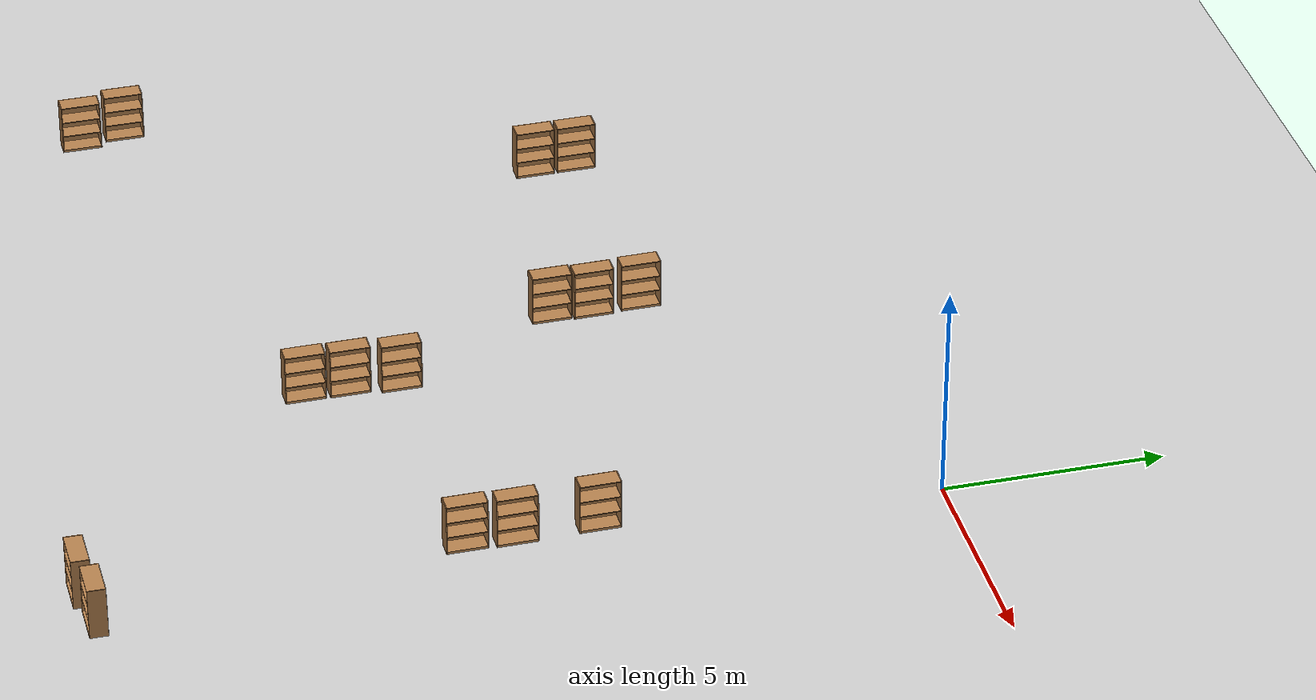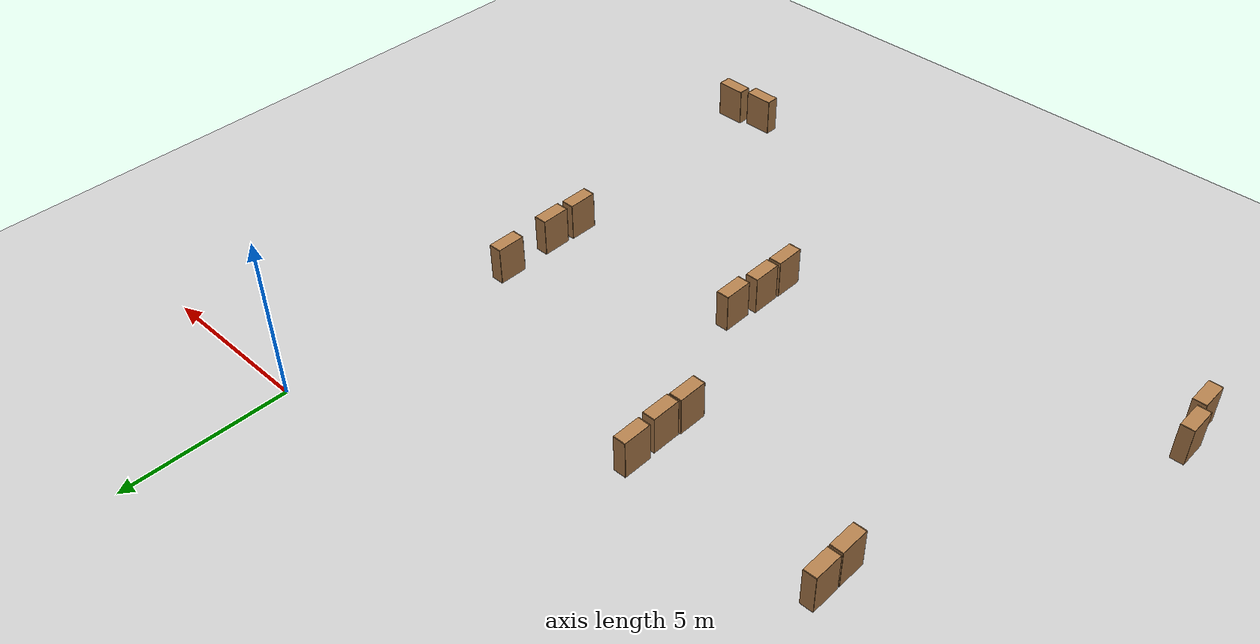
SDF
<sdf version="1.6">
 <world name="default">
  <model name="ground_plane">
   <static>1</static>
   <link name="link">
    <collision name="collision">
     <geometry><plane><normal>0 0 1</normal><size>100 100</size></plane></geometry>
     <surface>
      <contact><collide_bitmask>65535</collide_bitmask></contact>
      <friction><ode><mu>100</mu><mu2>50</mu2></ode></friction>
     </surface>
    </collision>
    <visual name="visual">
     <cast_shadows>0</cast_shadows>
     <geometry><plane><normal>0 0 1</normal><size>100 100</size></plane></geometry>
     <material>
      <script><uri>file://media/materials/scripts/gazebo.material</uri><name>Gazebo/Grey</name></script>
     </material>
    </visual>
   </link>
  </model>
  <model name="bookshelf_clone_clone_0_clone_clone_0_clone_0">
   <static>1</static>
   <link name="link">
    <inertial><mass>1</mass></inertial>
    <collision name="back">
     <pose>0 0.005 0.6 0 -0 0</pose>
     <geometry><box><size>0.9 0.01 1.2</size></box></geometry>
    </collision>
    <visual name="visual1">
     <pose>0 0.005 0.6 0 -0 0</pose>
     <geometry><box><size>0.9 0.01 1.2</size></box></geometry>
     <material>
      <script><uri>file://media/materials/scripts/gazebo.material</uri><name>Gazebo/Wood</name></script>
     </material>
    </visual>
    <collision name="left_side">
     <pose>0.45 -0.195 0.6 0 -0 0</pose>
     <geometry><box><size>0.02 0.4 1.2</size></box></geometry>
    </collision>
    <visual name="visual2">
     <pose>0.45 -0.195 0.6 0 -0 0</pose>
     <geometry><box><size>0.02 0.4 1.2</size></box></geometry>
     <material>
      <script><uri>file://media/materials/scripts/gazebo.material</uri><name>Gazebo/Wood</name></script>
     </material>
    </visual>
    <collision name="right_side">
     <pose>-0.45 -0.195 0.6 0 -0 0</pose>
     <geometry><box><size>0.02 0.4 1.2</size></box></geometry>
    </collision>
    <visual name="visual3">
     <pose>-0.45 -0.195 0.6 0 -0 0</pose>
     <geometry><box><size>0.02 0.4 1.2</size></box></geometry>
     <material>
      <script><uri>file://media/materials/scripts/gazebo.material</uri><name>Gazebo/Wood</name></script>
     </material>
    </visual>
    <collision name="bottom">
     <pose>0 -0.195 0.03 0 -0 0</pose>
     <geometry><box><size>0.88 0.4 0.06</size></box></geometry>
    </collision>
    <visual name="visual4">
     <pose>0 -0.195 0.03 0 -0 0</pose>
     <geometry><box><size>0.88 0.4 0.06</size></box></geometry>
     <material>
      <script><uri>file://media/materials/scripts/gazebo.material</uri><name>Gazebo/Wood</name></script>
     </material>
    </visual>
    <collision name="top">
     <pose>0 -0.195 1.19 0 -0 0</pose>
     <geometry><box><size>0.88 0.4 0.02</size></box></geometry>
    </collision>
    <visual name="visual5">
     <pose>0 -0.195 1.19 0 -0 0</pose>
     <geometry><box><size>0.88 0.4 0.02</size></box></geometry>
     <material>
      <script><uri>file://media/materials/scripts/gazebo.material</uri><name>Gazebo/Wood</name></script>
     </material>
    </visual>
    <collision name="low_shelf">
     <pose>0 -0.195 0.43 0 -0 0</pose>
     <geometry><box><size>0.88 0.4 0.02</size></box></geometry>
    </collision>
    <visual name="visual6">
     <pose>0 -0.195 0.43 0 -0 0</pose>
     <geometry><box><size>0.88 0.4 0.02</size></box></geometry>
     <material>
      <script><uri>file://media/materials/scripts/gazebo.material</uri><name>Gazebo/Wood</name></script>
     </material>
    </visual>
    <collision name="high_shelf">
     <pose>0 -0.195 0.8 0 -0 0</pose>
     <geometry><box><size>0.88 0.4 0.02</size></box></geometry>
    </collision>
    <visual name="visual7">
     <pose>0 -0.195 0.8 0 -0 0</pose>
     <geometry><box><size>0.88 0.4 0.02</size></box></geometry>
     <material>
      <script><uri>file://media/materials/scripts/gazebo.material</uri><name>Gazebo/Wood</name></script>
     </material>
    </visual>
   </link>
   <pose>-14.7086 -4.5102 0 0 -0 1.58018</pose>
  </model>
  <model name="bookshelf_clone_clone_0_clone_clone_0_clone_1">
   <static>1</static>
   <link name="link">
    <inertial><mass>1</mass></inertial>
    <collision name="back">
     <pose>0 0.005 0.6 0 -0 0</pose>
     <geometry><box><size>0.9 0.01 1.2</size></box></geometry>
    </collision>
    <visual name="visual1">
     <pose>0 0.005 0.6 0 -0 0</pose>
     <geometry><box><size>0.9 0.01 1.2</size></box></geometry>
     <material>
      <script><uri>file://media/materials/scripts/gazebo.material</uri><name>Gazebo/Wood</name></script>
     </material>
    </visual>
    <collision name="left_side">
     <pose>0.45 -0.195 0.6 0 -0 0</pose>
     <geometry><box><size>0.02 0.4 1.2</size></box></geometry>
    </collision>
    <visual name="visual2">
     <pose>0.45 -0.195 0.6 0 -0 0</pose>
     <geometry><box><size>0.02 0.4 1.2</size></box></geometry>
     <material>
      <script><uri>file://media/materials/scripts/gazebo.material</uri><name>Gazebo/Wood</name></script>
     </material>
    </visual>
    <collision name="right_side">
     <pose>-0.45 -0.195 0.6 0 -0 0</pose>
     <geometry><box><size>0.02 0.4 1.2</size></box></geometry>
    </collision>
    <visual name="visual3">
     <pose>-0.45 -0.195 0.6 0 -0 0</pose>
     <geometry><box><size>0.02 0.4 1.2</size></box></geometry>
     <material>
      <script><uri>file://media/materials/scripts/gazebo.material</uri><name>Gazebo/Wood</name></script>
     </material>
    </visual>
    <collision name="bottom">
     <pose>0 -0.195 0.03 0 -0 0</pose>
     <geometry><box><size>0.88 0.4 0.06</size></box></geometry>
    </collision>
    <visual name="visual4">
     <pose>0 -0.195 0.03 0 -0 0</pose>
     <geometry><box><size>0.88 0.4 0.06</size></box></geometry>
     <material>
      <script><uri>file://media/materials/scripts/gazebo.material</uri><name>Gazebo/Wood</name></script>
     </material>
    </visual>
    <collision name="top">
     <pose>0 -0.195 1.19 0 -0 0</pose>
     <geometry><box><size>0.88 0.4 0.02</size></box></geometry>
    </collision>
    <visual name="visual5">
     <pose>0 -0.195 1.19 0 -0 0</pose>
     <geometry><box><size>0.88 0.4 0.02</size></box></geometry>
     <material>
      <script><uri>file://media/materials/scripts/gazebo.material</uri><name>Gazebo/Wood</name></script>
     </material>
    </visual>
    <collision name="low_shelf">
     <pose>0 -0.195 0.43 0 -0 0</pose>
     <geometry><box><size>0.88 0.4 0.02</size></box></geometry>
    </collision>
    <visual name="visual6">
     <pose>0 -0.195 0.43 0 -0 0</pose>
     <geometry><box><size>0.88 0.4 0.02</size></box></geometry>
     <material>
      <script><uri>file://media/materials/scripts/gazebo.material</uri><name>Gazebo/Wood</name></script>
     </material>
    </visual>
    <collision name="high_shelf">
     <pose>0 -0.195 0.8 0 -0 0</pose>
     <geometry><box><size>0.88 0.4 0.02</size></box></geometry>
    </collision>
    <visual name="visual7">
     <pose>0 -0.195 0.8 0 -0 0</pose>
     <geometry><box><size>0.88 0.4 0.02</size></box></geometry>
     <material>
      <script><uri>file://media/materials/scripts/gazebo.material</uri><name>Gazebo/Wood</name></script>
     </material>
    </visual>
   </link>
   <pose>-14.6943 -5.48506 0 0 -0 1.58018</pose>
  </model>
  <model name="bookshelf_clone_clone_0_clone_clone_0_clone_1_clone">
   <static>1</static>
   <link name="link">
    <inertial><mass>1</mass></inertial>
    <collision name="back">
     <pose>0 0.005 0.6 0 -0 0</pose>
     <geometry><box><size>0.9 0.01 1.2</size></box></geometry>
    </collision>
    <visual name="visual1">
     <pose>0 0.005 0.6 0 -0 0</pose>
     <geometry><box><size>0.9 0.01 1.2</size></box></geometry>
     <material>
      <script><uri>file://media/materials/scripts/gazebo.material</uri><name>Gazebo/Wood</name></script>
     </material>
    </visual>
    <collision name="left_side">
     <pose>0.45 -0.195 0.6 0 -0 0</pose>
     <geometry><box><size>0.02 0.4 1.2</size></box></geometry>
    </collision>
    <visual name="visual2">
     <pose>0.45 -0.195 0.6 0 -0 0</pose>
     <geometry><box><size>0.02 0.4 1.2</size></box></geometry>
     <material>
      <script><uri>file://media/materials/scripts/gazebo.material</uri><name>Gazebo/Wood</name></script>
     </material>
    </visual>
    <collision name="right_side">
     <pose>-0.45 -0.195 0.6 0 -0 0</pose>
     <geometry><box><size>0.02 0.4 1.2</size></box></geometry>
    </collision>
    <visual name="visual3">
     <pose>-0.45 -0.195 0.6 0 -0 0</pose>
     <geometry><box><size>0.02 0.4 1.2</size></box></geometry>
     <material>
      <script><uri>file://media/materials/scripts/gazebo.material</uri><name>Gazebo/Wood</name></script>
     </material>
    </visual>
    <collision name="bottom">
     <pose>0 -0.195 0.03 0 -0 0</pose>
     <geometry><box><size>0.88 0.4 0.06</size></box></geometry>
    </collision>
    <visual name="visual4">
     <pose>0 -0.195 0.03 0 -0 0</pose>
     <geometry><box><size>0.88 0.4 0.06</size></box></geometry>
     <material>
      <script><uri>file://media/materials/scripts/gazebo.material</uri><name>Gazebo/Wood</name></script>
     </material>
    </visual>
    <collision name="top">
     <pose>0 -0.195 1.19 0 -0 0</pose>
     <geometry><box><size>0.88 0.4 0.02</size></box></geometry>
    </collision>
    <visual name="visual5">
     <pose>0 -0.195 1.19 0 -0 0</pose>
     <geometry><box><size>0.88 0.4 0.02</size></box></geometry>
     <material>
      <script><uri>file://media/materials/scripts/gazebo.material</uri><name>Gazebo/Wood</name></script>
     </material>
    </visual>
    <collision name="low_shelf">
     <pose>0 -0.195 0.43 0 -0 0</pose>
     <geometry><box><size>0.88 0.4 0.02</size></box></geometry>
    </collision>
    <visual name="visual6">
     <pose>0 -0.195 0.43 0 -0 0</pose>
     <geometry><box><size>0.88 0.4 0.02</size></box></geometry>
     <material>
      <script><uri>file://media/materials/scripts/gazebo.material</uri><name>Gazebo/Wood</name></script>
     </material>
    </visual>
    <collision name="high_shelf">
     <pose>0 -0.195 0.8 0 -0 0</pose>
     <geometry><box><size>0.88 0.4 0.02</size></box></geometry>
    </collision>
    <visual name="visual7">
     <pose>0 -0.195 0.8 0 -0 0</pose>
     <geometry><box><size>0.88 0.4 0.02</size></box></geometry>
     <material>
      <script><uri>file://media/materials/scripts/gazebo.material</uri><name>Gazebo/Wood</name></script>
     </material>
    </visual>
   </link>
   <pose>-18.6436 -14.5097 0 0 -0 1.58018</pose>
  </model>
  <model name="bookshelf_clone_clone_0_clone_clone_0_clone_1_clone_0">
   <static>1</static>
   <link name="link">
    <inertial><mass>1</mass></inertial>
    <collision name="back">
     <pose>0 0.005 0.6 0 -0 0</pose>
     <geometry><box><size>0.9 0.01 1.2</size></box></geometry>
    </collision>
    <visual name="visual1">
     <pose>0 0.005 0.6 0 -0 0</pose>
     <geometry><box><size>0.9 0.01 1.2</size></box></geometry>
     <material>
      <script><uri>file://media/materials/scripts/gazebo.material</uri><name>Gazebo/Wood</name></script>
     </material>
    </visual>
    <collision name="left_side">
     <pose>0.45 -0.195 0.6 0 -0 0</pose>
     <geometry><box><size>0.02 0.4 1.2</size></box></geometry>
    </collision>
    <visual name="visual2">
     <pose>0.45 -0.195 0.6 0 -0 0</pose>
     <geometry><box><size>0.02 0.4 1.2</size></box></geometry>
     <material>
      <script><uri>file://media/materials/scripts/gazebo.material</uri><name>Gazebo/Wood</name></script>
     </material>
    </visual>
    <collision name="right_side">
     <pose>-0.45 -0.195 0.6 0 -0 0</pose>
     <geometry><box><size>0.02 0.4 1.2</size></box></geometry>
    </collision>
    <visual name="visual3">
     <pose>-0.45 -0.195 0.6 0 -0 0</pose>
     <geometry><box><size>0.02 0.4 1.2</size></box></geometry>
     <material>
      <script><uri>file://media/materials/scripts/gazebo.material</uri><name>Gazebo/Wood</name></script>
     </material>
    </visual>
    <collision name="bottom">
     <pose>0 -0.195 0.03 0 -0 0</pose>
     <geometry><box><size>0.88 0.4 0.06</size></box></geometry>
    </collision>
    <visual name="visual4">
     <pose>0 -0.195 0.03 0 -0 0</pose>
     <geometry><box><size>0.88 0.4 0.06</size></box></geometry>
     <material>
      <script><uri>file://media/materials/scripts/gazebo.material</uri><name>Gazebo/Wood</name></script>
     </material>
    </visual>
    <collision name="top">
     <pose>0 -0.195 1.19 0 -0 0</pose>
     <geometry><box><size>0.88 0.4 0.02</size></box></geometry>
    </collision>
    <visual name="visual5">
     <pose>0 -0.195 1.19 0 -0 0</pose>
     <geometry><box><size>0.88 0.4 0.02</size></box></geometry>
     <material>
      <script><uri>file://media/materials/scripts/gazebo.material</uri><name>Gazebo/Wood</name></script>
     </material>
    </visual>
    <collision name="low_shelf">
     <pose>0 -0.195 0.43 0 -0 0</pose>
     <geometry><box><size>0.88 0.4 0.02</size></box></geometry>
    </collision>
    <visual name="visual6">
     <pose>0 -0.195 0.43 0 -0 0</pose>
     <geometry><box><size>0.88 0.4 0.02</size></box></geometry>
     <material>
      <script><uri>file://media/materials/scripts/gazebo.material</uri><name>Gazebo/Wood</name></script>
     </material>
    </visual>
    <collision name="high_shelf">
     <pose>0 -0.195 0.8 0 -0 0</pose>
     <geometry><box><size>0.88 0.4 0.02</size></box></geometry>
    </collision>
    <visual name="visual7">
     <pose>0 -0.195 0.8 0 -0 0</pose>
     <geometry><box><size>0.88 0.4 0.02</size></box></geometry>
     <material>
      <script><uri>file://media/materials/scripts/gazebo.material</uri><name>Gazebo/Wood</name></script>
     </material>
    </visual>
   </link>
   <pose>-18.4316 -15.5537 0 0 -0 1.58018</pose>
  </model>
  <model name="bookshelf_clone_clone_0_clone_clone_0_clone_5_clone">
   <static>1</static>
   <link name="link">
    <inertial><mass>1</mass></inertial>
    <collision name="back">
     <pose>0 0.005 0.6 0 -0 0</pose>
     <geometry><box><size>0.9 0.01 1.2</size></box></geometry>
    </collision>
    <visual name="visual1">
     <pose>0 0.005 0.6 0 -0 0</pose>
     <geometry><box><size>0.9 0.01 1.2</size></box></geometry>
     <material>
      <script><uri>file://media/materials/scripts/gazebo.material</uri><name>Gazebo/Wood</name></script>
     </material>
    </visual>
    <collision name="left_side">
     <pose>0.45 -0.195 0.6 0 -0 0</pose>
     <geometry><box><size>0.02 0.4 1.2</size></box></geometry>
    </collision>
    <visual name="visual2">
     <pose>0.45 -0.195 0.6 0 -0 0</pose>
     <geometry><box><size>0.02 0.4 1.2</size></box></geometry>
     <material>
      <script><uri>file://media/materials/scripts/gazebo.material</uri><name>Gazebo/Wood</name></script>
     </material>
    </visual>
    <collision name="right_side">
     <pose>-0.45 -0.195 0.6 0 -0 0</pose>
     <geometry><box><size>0.02 0.4 1.2</size></box></geometry>
    </collision>
    <visual name="visual3">
     <pose>-0.45 -0.195 0.6 0 -0 0</pose>
     <geometry><box><size>0.02 0.4 1.2</size></box></geometry>
     <material>
      <script><uri>file://media/materials/scripts/gazebo.material</uri><name>Gazebo/Wood</name></script>
     </material>
    </visual>
    <collision name="bottom">
     <pose>0 -0.195 0.03 0 -0 0</pose>
     <geometry><box><size>0.88 0.4 0.06</size></box></geometry>
    </collision>
    <visual name="visual4">
     <pose>0 -0.195 0.03 0 -0 0</pose>
     <geometry><box><size>0.88 0.4 0.06</size></box></geometry>
     <material>
      <script><uri>file://media/materials/scripts/gazebo.material</uri><name>Gazebo/Wood</name></script>
     </material>
    </visual>
    <collision name="top">
     <pose>0 -0.195 1.19 0 -0 0</pose>
     <geometry><box><size>0.88 0.4 0.02</size></box></geometry>
    </collision>
    <visual name="visual5">
     <pose>0 -0.195 1.19 0 -0 0</pose>
     <geometry><box><size>0.88 0.4 0.02</size></box></geometry>
     <material>
      <script><uri>file://media/materials/scripts/gazebo.material</uri><name>Gazebo/Wood</name></script>
     </material>
    </visual>
    <collision name="low_shelf">
     <pose>0 -0.195 0.43 0 -0 0</pose>
     <geometry><box><size>0.88 0.4 0.02</size></box></geometry>
    </collision>
    <visual name="visual6">
     <pose>0 -0.195 0.43 0 -0 0</pose>
     <geometry><box><size>0.88 0.4 0.02</size></box></geometry>
     <material>
      <script><uri>file://media/materials/scripts/gazebo.material</uri><name>Gazebo/Wood</name></script>
     </material>
    </visual>
    <collision name="high_shelf">
     <pose>0 -0.195 0.8 0 -0 0</pose>
     <geometry><box><size>0.88 0.4 0.02</size></box></geometry>
    </collision>
    <visual name="visual7">
     <pose>0 -0.195 0.8 0 -0 0</pose>
     <geometry><box><size>0.88 0.4 0.02</size></box></geometry>
     <material>
      <script><uri>file://media/materials/scripts/gazebo.material</uri><name>Gazebo/Wood</name></script>
     </material>
    </visual>
   </link>
   <pose>-8.72005 -4.497 0 0 -0 1.58018</pose>
  </model>
  <model name="bookshelf_clone_clone_0_clone_clone_0_clone_5_clone_0">
   <static>1</static>
   <link name="link">
    <inertial><mass>1</mass></inertial>
    <collision name="back">
     <pose>0 0.005 0.6 0 -0 0</pose>
     <geometry><box><size>0.9 0.01 1.2</size></box></geometry>
    </collision>
    <visual name="visual1">
     <pose>0 0.005 0.6 0 -0 0</pose>
     <geometry><box><size>0.9 0.01 1.2</size></box></geometry>
     <material>
      <script><uri>file://media/materials/scripts/gazebo.material</uri><name>Gazebo/Wood</name></script>
     </material>
    </visual>
    <collision name="left_side">
     <pose>0.45 -0.195 0.6 0 -0 0</pose>
     <geometry><box><size>0.02 0.4 1.2</size></box></geometry>
    </collision>
    <visual name="visual2">
     <pose>0.45 -0.195 0.6 0 -0 0</pose>
     <geometry><box><size>0.02 0.4 1.2</size></box></geometry>
     <material>
      <script><uri>file://media/materials/scripts/gazebo.material</uri><name>Gazebo/Wood</name></script>
     </material>
    </visual>
    <collision name="right_side">
     <pose>-0.45 -0.195 0.6 0 -0 0</pose>
     <geometry><box><size>0.02 0.4 1.2</size></box></geometry>
    </collision>
    <visual name="visual3">
     <pose>-0.45 -0.195 0.6 0 -0 0</pose>
     <geometry><box><size>0.02 0.4 1.2</size></box></geometry>
     <material>
      <script><uri>file://media/materials/scripts/gazebo.material</uri><name>Gazebo/Wood</name></script>
     </material>
    </visual>
    <collision name="bottom">
     <pose>0 -0.195 0.03 0 -0 0</pose>
     <geometry><box><size>0.88 0.4 0.06</size></box></geometry>
    </collision>
    <visual name="visual4">
     <pose>0 -0.195 0.03 0 -0 0</pose>
     <geometry><box><size>0.88 0.4 0.06</size></box></geometry>
     <material>
      <script><uri>file://media/materials/scripts/gazebo.material</uri><name>Gazebo/Wood</name></script>
     </material>
    </visual>
    <collision name="top">
     <pose>0 -0.195 1.19 0 -0 0</pose>
     <geometry><box><size>0.88 0.4 0.02</size></box></geometry>
    </collision>
    <visual name="visual5">
     <pose>0 -0.195 1.19 0 -0 0</pose>
     <geometry><box><size>0.88 0.4 0.02</size></box></geometry>
     <material>
      <script><uri>file://media/materials/scripts/gazebo.material</uri><name>Gazebo/Wood</name></script>
     </material>
    </visual>
    <collision name="low_shelf">
     <pose>0 -0.195 0.43 0 -0 0</pose>
     <geometry><box><size>0.88 0.4 0.02</size></box></geometry>
    </collision>
    <visual name="visual6">
     <pose>0 -0.195 0.43 0 -0 0</pose>
     <geometry><box><size>0.88 0.4 0.02</size></box></geometry>
     <material>
      <script><uri>file://media/materials/scripts/gazebo.material</uri><name>Gazebo/Wood</name></script>
     </material>
    </visual>
    <collision name="high_shelf">
     <pose>0 -0.195 0.8 0 -0 0</pose>
     <geometry><box><size>0.88 0.4 0.02</size></box></geometry>
    </collision>
    <visual name="visual7">
     <pose>0 -0.195 0.8 0 -0 0</pose>
     <geometry><box><size>0.88 0.4 0.02</size></box></geometry>
     <material>
      <script><uri>file://media/materials/scripts/gazebo.material</uri><name>Gazebo/Wood</name></script>
     </material>
    </visual>
   </link>
   <pose>-8.66421 -5.59645 0 0 -0 1.58018</pose>
  </model>
  <model name="bookshelf_clone_clone_0_clone_clone_0_clone_5_clone_1">
   <static>1</static>
   <link name="link">
    <inertial><mass>1</mass></inertial>
    <collision name="back">
     <pose>0 0.005 0.6 0 -0 0</pose>
     <geometry><box><size>0.9 0.01 1.2</size></box></geometry>
    </collision>
    <visual name="visual1">
     <pose>0 0.005 0.6 0 -0 0</pose>
     <geometry><box><size>0.9 0.01 1.2</size></box></geometry>
     <material>
      <script><uri>file://media/materials/scripts/gazebo.material</uri><name>Gazebo/Wood</name></script>
     </material>
    </visual>
    <collision name="left_side">
     <pose>0.45 -0.195 0.6 0 -0 0</pose>
     <geometry><box><size>0.02 0.4 1.2</size></box></geometry>
    </collision>
    <visual name="visual2">
     <pose>0.45 -0.195 0.6 0 -0 0</pose>
     <geometry><box><size>0.02 0.4 1.2</size></box></geometry>
     <material>
      <script><uri>file://media/materials/scripts/gazebo.material</uri><name>Gazebo/Wood</name></script>
     </material>
    </visual>
    <collision name="right_side">
     <pose>-0.45 -0.195 0.6 0 -0 0</pose>
     <geometry><box><size>0.02 0.4 1.2</size></box></geometry>
    </collision>
    <visual name="visual3">
     <pose>-0.45 -0.195 0.6 0 -0 0</pose>
     <geometry><box><size>0.02 0.4 1.2</size></box></geometry>
     <material>
      <script><uri>file://media/materials/scripts/gazebo.material</uri><name>Gazebo/Wood</name></script>
     </material>
    </visual>
    <collision name="bottom">
     <pose>0 -0.195 0.03 0 -0 0</pose>
     <geometry><box><size>0.88 0.4 0.06</size></box></geometry>
    </collision>
    <visual name="visual4">
     <pose>0 -0.195 0.03 0 -0 0</pose>
     <geometry><box><size>0.88 0.4 0.06</size></box></geometry>
     <material>
      <script><uri>file://media/materials/scripts/gazebo.material</uri><name>Gazebo/Wood</name></script>
     </material>
    </visual>
    <collision name="top">
     <pose>0 -0.195 1.19 0 -0 0</pose>
     <geometry><box><size>0.88 0.4 0.02</size></box></geometry>
    </collision>
    <visual name="visual5">
     <pose>0 -0.195 1.19 0 -0 0</pose>
     <geometry><box><size>0.88 0.4 0.02</size></box></geometry>
     <material>
      <script><uri>file://media/materials/scripts/gazebo.material</uri><name>Gazebo/Wood</name></script>
     </material>
    </visual>
    <collision name="low_shelf">
     <pose>0 -0.195 0.43 0 -0 0</pose>
     <geometry><box><size>0.88 0.4 0.02</size></box></geometry>
    </collision>
    <visual name="visual6">
     <pose>0 -0.195 0.43 0 -0 0</pose>
     <geometry><box><size>0.88 0.4 0.02</size></box></geometry>
     <material>
      <script><uri>file://media/materials/scripts/gazebo.material</uri><name>Gazebo/Wood</name></script>
     </material>
    </visual>
    <collision name="high_shelf">
     <pose>0 -0.195 0.8 0 -0 0</pose>
     <geometry><box><size>0.88 0.4 0.02</size></box></geometry>
    </collision>
    <visual name="visual7">
     <pose>0 -0.195 0.8 0 -0 0</pose>
     <geometry><box><size>0.88 0.4 0.02</size></box></geometry>
     <material>
      <script><uri>file://media/materials/scripts/gazebo.material</uri><name>Gazebo/Wood</name></script>
     </material>
    </visual>
   </link>
   <pose>-8.69131 -6.55375 0 0 -0 1.58018</pose>
  </model>
  <model name="bookshelf_clone_clone_2_clone_5">
   <static>1</static>
   <link name="link">
    <inertial><mass>1</mass></inertial>
    <collision name="back">
     <pose>0 0.005 0.6 0 -0 0</pose>
     <geometry><box><size>0.9 0.01 1.2</size></box></geometry>
    </collision>
    <visual name="visual1">
     <pose>0 0.005 0.6 0 -0 0</pose>
     <geometry><box><size>0.9 0.01 1.2</size></box></geometry>
     <material>
      <script><uri>file://media/materials/scripts/gazebo.material</uri><name>Gazebo/Wood</name></script>
     </material>
    </visual>
    <collision name="left_side">
     <pose>0.45 -0.195 0.6 0 -0 0</pose>
     <geometry><box><size>0.02 0.4 1.2</size></box></geometry>
    </collision>
    <visual name="visual2">
     <pose>0.45 -0.195 0.6 0 -0 0</pose>
     <geometry><box><size>0.02 0.4 1.2</size></box></geometry>
     <material>
      <script><uri>file://media/materials/scripts/gazebo.material</uri><name>Gazebo/Wood</name></script>
     </material>
    </visual>
    <collision name="right_side">
     <pose>-0.45 -0.195 0.6 0 -0 0</pose>
     <geometry><box><size>0.02 0.4 1.2</size></box></geometry>
    </collision>
    <visual name="visual3">
     <pose>-0.45 -0.195 0.6 0 -0 0</pose>
     <geometry><box><size>0.02 0.4 1.2</size></box></geometry>
     <material>
      <script><uri>file://media/materials/scripts/gazebo.material</uri><name>Gazebo/Wood</name></script>
     </material>
    </visual>
    <collision name="bottom">
     <pose>0 -0.195 0.03 0 -0 0</pose>
     <geometry><box><size>0.88 0.4 0.06</size></box></geometry>
    </collision>
    <visual name="visual4">
     <pose>0 -0.195 0.03 0 -0 0</pose>
     <geometry><box><size>0.88 0.4 0.06</size></box></geometry>
     <material>
      <script><uri>file://media/materials/scripts/gazebo.material</uri><name>Gazebo/Wood</name></script>
     </material>
    </visual>
    <collision name="top">
     <pose>0 -0.195 1.19 0 -0 0</pose>
     <geometry><box><size>0.88 0.4 0.02</size></box></geometry>
    </collision>
    <visual name="visual5">
     <pose>0 -0.195 1.19 0 -0 0</pose>
     <geometry><box><size>0.88 0.4 0.02</size></box></geometry>
     <material>
      <script><uri>file://media/materials/scripts/gazebo.material</uri><name>Gazebo/Wood</name></script>
     </material>
    </visual>
    <collision name="low_shelf">
     <pose>0 -0.195 0.43 0 -0 0</pose>
     <geometry><box><size>0.88 0.4 0.02</size></box></geometry>
    </collision>
    <visual name="visual6">
     <pose>0 -0.195 0.43 0 -0 0</pose>
     <geometry><box><size>0.88 0.4 0.02</size></box></geometry>
     <material>
      <script><uri>file://media/materials/scripts/gazebo.material</uri><name>Gazebo/Wood</name></script>
     </material>
    </visual>
    <collision name="high_shelf">
     <pose>0 -0.195 0.8 0 -0 0</pose>
     <geometry><box><size>0.88 0.4 0.02</size></box></geometry>
    </collision>
    <visual name="visual7">
     <pose>0 -0.195 0.8 0 -0 0</pose>
     <geometry><box><size>0.88 0.4 0.02</size></box></geometry>
     <material>
      <script><uri>file://media/materials/scripts/gazebo.material</uri><name>Gazebo/Wood</name></script>
     </material>
    </visual>
   </link>
   <pose>-0.849758 -18.3133 0 0 -0 0</pose>
  </model>
  <model name="bookshelf_clone_clone_2_clone_6">
   <static>1</static>
   <link name="link">
    <inertial><mass>1</mass></inertial>
    <collision name="back">
     <pose>0 0.005 0.6 0 -0 0</pose>
     <geometry><box><size>0.9 0.01 1.2</size></box></geometry>
    </collision>
    <visual name="visual1">
     <pose>0 0.005 0.6 0 -0 0</pose>
     <geometry><box><size>0.9 0.01 1.2</size></box></geometry>
     <material>
      <script><uri>file://media/materials/scripts/gazebo.material</uri><name>Gazebo/Wood</name></script>
     </material>
    </visual>
    <collision name="left_side">
     <pose>0.45 -0.195 0.6 0 -0 0</pose>
     <geometry><box><size>0.02 0.4 1.2</size></box></geometry>
    </collision>
    <visual name="visual2">
     <pose>0.45 -0.195 0.6 0 -0 0</pose>
     <geometry><box><size>0.02 0.4 1.2</size></box></geometry>
     <material>
      <script><uri>file://media/materials/scripts/gazebo.material</uri><name>Gazebo/Wood</name></script>
     </material>
    </visual>
    <collision name="right_side">
     <pose>-0.45 -0.195 0.6 0 -0 0</pose>
     <geometry><box><size>0.02 0.4 1.2</size></box></geometry>
    </collision>
    <visual name="visual3">
     <pose>-0.45 -0.195 0.6 0 -0 0</pose>
     <geometry><box><size>0.02 0.4 1.2</size></box></geometry>
     <material>
      <script><uri>file://media/materials/scripts/gazebo.material</uri><name>Gazebo/Wood</name></script>
     </material>
    </visual>
    <collision name="bottom">
     <pose>0 -0.195 0.03 0 -0 0</pose>
     <geometry><box><size>0.88 0.4 0.06</size></box></geometry>
    </collision>
    <visual name="visual4">
     <pose>0 -0.195 0.03 0 -0 0</pose>
     <geometry><box><size>0.88 0.4 0.06</size></box></geometry>
     <material>
      <script><uri>file://media/materials/scripts/gazebo.material</uri><name>Gazebo/Wood</name></script>
     </material>
    </visual>
    <collision name="top">
     <pose>0 -0.195 1.19 0 -0 0</pose>
     <geometry><box><size>0.88 0.4 0.02</size></box></geometry>
    </collision>
    <visual name="visual5">
     <pose>0 -0.195 1.19 0 -0 0</pose>
     <geometry><box><size>0.88 0.4 0.02</size></box></geometry>
     <material>
      <script><uri>file://media/materials/scripts/gazebo.material</uri><name>Gazebo/Wood</name></script>
     </material>
    </visual>
    <collision name="low_shelf">
     <pose>0 -0.195 0.43 0 -0 0</pose>
     <geometry><box><size>0.88 0.4 0.02</size></box></geometry>
    </collision>
    <visual name="visual6">
     <pose>0 -0.195 0.43 0 -0 0</pose>
     <geometry><box><size>0.88 0.4 0.02</size></box></geometry>
     <material>
      <script><uri>file://media/materials/scripts/gazebo.material</uri><name>Gazebo/Wood</name></script>
     </material>
    </visual>
    <collision name="high_shelf">
     <pose>0 -0.195 0.8 0 -0 0</pose>
     <geometry><box><size>0.88 0.4 0.02</size></box></geometry>
    </collision>
    <visual name="visual7">
     <pose>0 -0.195 0.8 0 -0 0</pose>
     <geometry><box><size>0.88 0.4 0.02</size></box></geometry>
     <material>
      <script><uri>file://media/materials/scripts/gazebo.material</uri><name>Gazebo/Wood</name></script>
     </material>
    </visual>
   </link>
   <pose>0.22417 -18.1546 0 0 -0 0</pose>
  </model>
  <model name="bookshelf_clone_clone_0_clone_clone_0_clone_5_clone_clone_0_clone_3">
   <static>1</static>
   <link name="link">
    <inertial><mass>1</mass></inertial>
    <collision name="back">
     <pose>0 0.005 0.6 0 -0 0</pose>
     <geometry><box><size>0.9 0.01 1.2</size></box></geometry>
    </collision>
    <visual name="visual1">
     <pose>0 0.005 0.6 0 -0 0</pose>
     <geometry><box><size>0.9 0.01 1.2</size></box></geometry>
     <material>
      <script><uri>file://media/materials/scripts/gazebo.material</uri><name>Gazebo/Wood</name></script>
     </material>
    </visual>
    <collision name="left_side">
     <pose>0.45 -0.195 0.6 0 -0 0</pose>
     <geometry><box><size>0.02 0.4 1.2</size></box></geometry>
    </collision>
    <visual name="visual2">
     <pose>0.45 -0.195 0.6 0 -0 0</pose>
     <geometry><box><size>0.02 0.4 1.2</size></box></geometry>
     <material>
      <script><uri>file://media/materials/scripts/gazebo.material</uri><name>Gazebo/Wood</name></script>
     </material>
    </visual>
    <collision name="right_side">
     <pose>-0.45 -0.195 0.6 0 -0 0</pose>
     <geometry><box><size>0.02 0.4 1.2</size></box></geometry>
    </collision>
    <visual name="visual3">
     <pose>-0.45 -0.195 0.6 0 -0 0</pose>
     <geometry><box><size>0.02 0.4 1.2</size></box></geometry>
     <material>
      <script><uri>file://media/materials/scripts/gazebo.material</uri><name>Gazebo/Wood</name></script>
     </material>
    </visual>
    <collision name="bottom">
     <pose>0 -0.195 0.03 0 -0 0</pose>
     <geometry><box><size>0.88 0.4 0.06</size></box></geometry>
    </collision>
    <visual name="visual4">
     <pose>0 -0.195 0.03 0 -0 0</pose>
     <geometry><box><size>0.88 0.4 0.06</size></box></geometry>
     <material>
      <script><uri>file://media/materials/scripts/gazebo.material</uri><name>Gazebo/Wood</name></script>
     </material>
    </visual>
    <collision name="top">
     <pose>0 -0.195 1.19 0 -0 0</pose>
     <geometry><box><size>0.88 0.4 0.02</size></box></geometry>
    </collision>
    <visual name="visual5">
     <pose>0 -0.195 1.19 0 -0 0</pose>
     <geometry><box><size>0.88 0.4 0.02</size></box></geometry>
     <material>
      <script><uri>file://media/materials/scripts/gazebo.material</uri><name>Gazebo/Wood</name></script>
     </material>
    </visual>
    <collision name="low_shelf">
     <pose>0 -0.195 0.43 0 -0 0</pose>
     <geometry><box><size>0.88 0.4 0.02</size></box></geometry>
    </collision>
    <visual name="visual6">
     <pose>0 -0.195 0.43 0 -0 0</pose>
     <geometry><box><size>0.88 0.4 0.02</size></box></geometry>
     <material>
      <script><uri>file://media/materials/scripts/gazebo.material</uri><name>Gazebo/Wood</name></script>
     </material>
    </visual>
    <collision name="high_shelf">
     <pose>0 -0.195 0.8 0 -0 0</pose>
     <geometry><box><size>0.88 0.4 0.02</size></box></geometry>
    </collision>
    <visual name="visual7">
     <pose>0 -0.195 0.8 0 -0 0</pose>
     <geometry><box><size>0.88 0.4 0.02</size></box></geometry>
     <material>
      <script><uri>file://media/materials/scripts/gazebo.material</uri><name>Gazebo/Wood</name></script>
     </material>
    </visual>
   </link>
   <pose>-0.763431 -7.43895 0 0 -0 1.58018</pose>
  </model>
  <model name="bookshelf_clone_clone_0_clone_clone_0_clone_5_clone_clone_0_clone_3_clone">
   <static>1</static>
   <link name="link">
    <inertial><mass>1</mass></inertial>
    <collision name="back">
     <pose>0 0.005 0.6 0 -0 0</pose>
     <geometry><box><size>0.9 0.01 1.2</size></box></geometry>
    </collision>
    <visual name="visual1">
     <pose>0 0.005 0.6 0 -0 0</pose>
     <geometry><box><size>0.9 0.01 1.2</size></box></geometry>
     <material>
      <script><uri>file://media/materials/scripts/gazebo.material</uri><name>Gazebo/Wood</name></script>
     </material>
    </visual>
    <collision name="left_side">
     <pose>0.45 -0.195 0.6 0 -0 0</pose>
     <geometry><box><size>0.02 0.4 1.2</size></box></geometry>
    </collision>
    <visual name="visual2">
     <pose>0.45 -0.195 0.6 0 -0 0</pose>
     <geometry><box><size>0.02 0.4 1.2</size></box></geometry>
     <material>
      <script><uri>file://media/materials/scripts/gazebo.material</uri><name>Gazebo/Wood</name></script>
     </material>
    </visual>
    <collision name="right_side">
     <pose>-0.45 -0.195 0.6 0 -0 0</pose>
     <geometry><box><size>0.02 0.4 1.2</size></box></geometry>
    </collision>
    <visual name="visual3">
     <pose>-0.45 -0.195 0.6 0 -0 0</pose>
     <geometry><box><size>0.02 0.4 1.2</size></box></geometry>
     <material>
      <script><uri>file://media/materials/scripts/gazebo.material</uri><name>Gazebo/Wood</name></script>
     </material>
    </visual>
    <collision name="bottom">
     <pose>0 -0.195 0.03 0 -0 0</pose>
     <geometry><box><size>0.88 0.4 0.06</size></box></geometry>
    </collision>
    <visual name="visual4">
     <pose>0 -0.195 0.03 0 -0 0</pose>
     <geometry><box><size>0.88 0.4 0.06</size></box></geometry>
     <material>
      <script><uri>file://media/materials/scripts/gazebo.material</uri><name>Gazebo/Wood</name></script>
     </material>
    </visual>
    <collision name="top">
     <pose>0 -0.195 1.19 0 -0 0</pose>
     <geometry><box><size>0.88 0.4 0.02</size></box></geometry>
    </collision>
    <visual name="visual5">
     <pose>0 -0.195 1.19 0 -0 0</pose>
     <geometry><box><size>0.88 0.4 0.02</size></box></geometry>
     <material>
      <script><uri>file://media/materials/scripts/gazebo.material</uri><name>Gazebo/Wood</name></script>
     </material>
    </visual>
    <collision name="low_shelf">
     <pose>0 -0.195 0.43 0 -0 0</pose>
     <geometry><box><size>0.88 0.4 0.02</size></box></geometry>
    </collision>
    <visual name="visual6">
     <pose>0 -0.195 0.43 0 -0 0</pose>
     <geometry><box><size>0.88 0.4 0.02</size></box></geometry>
     <material>
      <script><uri>file://media/materials/scripts/gazebo.material</uri><name>Gazebo/Wood</name></script>
     </material>
    </visual>
    <collision name="high_shelf">
     <pose>0 -0.195 0.8 0 -0 0</pose>
     <geometry><box><size>0.88 0.4 0.02</size></box></geometry>
    </collision>
    <visual name="visual7">
     <pose>0 -0.195 0.8 0 -0 0</pose>
     <geometry><box><size>0.88 0.4 0.02</size></box></geometry>
     <material>
      <script><uri>file://media/materials/scripts/gazebo.material</uri><name>Gazebo/Wood</name></script>
     </material>
    </visual>
   </link>
   <pose>-0.708217 -9.24908 0 0 -0 1.58018</pose>
  </model>
  <model name="bookshelf_clone_clone_0_clone_clone_0_clone_5_clone_clone_0_clone_3_clone_clone">
   <static>1</static>
   <link name="link">
    <inertial><mass>1</mass></inertial>
    <collision name="back">
     <pose>0 0.005 0.6 0 -0 0</pose>
     <geometry><box><size>0.9 0.01 1.2</size></box></geometry>
    </collision>
    <visual name="visual1">
     <pose>0 0.005 0.6 0 -0 0</pose>
     <geometry><box><size>0.9 0.01 1.2</size></box></geometry>
     <material>
      <script><uri>file://media/materials/scripts/gazebo.material</uri><name>Gazebo/Wood</name></script>
     </material>
    </visual>
    <collision name="left_side">
     <pose>0.45 -0.195 0.6 0 -0 0</pose>
     <geometry><box><size>0.02 0.4 1.2</size></box></geometry>
    </collision>
    <visual name="visual2">
     <pose>0.45 -0.195 0.6 0 -0 0</pose>
     <geometry><box><size>0.02 0.4 1.2</size></box></geometry>
     <material>
      <script><uri>file://media/materials/scripts/gazebo.material</uri><name>Gazebo/Wood</name></script>
     </material>
    </visual>
    <collision name="right_side">
     <pose>-0.45 -0.195 0.6 0 -0 0</pose>
     <geometry><box><size>0.02 0.4 1.2</size></box></geometry>
    </collision>
    <visual name="visual3">
     <pose>-0.45 -0.195 0.6 0 -0 0</pose>
     <geometry><box><size>0.02 0.4 1.2</size></box></geometry>
     <material>
      <script><uri>file://media/materials/scripts/gazebo.material</uri><name>Gazebo/Wood</name></script>
     </material>
    </visual>
    <collision name="bottom">
     <pose>0 -0.195 0.03 0 -0 0</pose>
     <geometry><box><size>0.88 0.4 0.06</size></box></geometry>
    </collision>
    <visual name="visual4">
     <pose>0 -0.195 0.03 0 -0 0</pose>
     <geometry><box><size>0.88 0.4 0.06</size></box></geometry>
     <material>
      <script><uri>file://media/materials/scripts/gazebo.material</uri><name>Gazebo/Wood</name></script>
     </material>
    </visual>
    <collision name="top">
     <pose>0 -0.195 1.19 0 -0 0</pose>
     <geometry><box><size>0.88 0.4 0.02</size></box></geometry>
    </collision>
    <visual name="visual5">
     <pose>0 -0.195 1.19 0 -0 0</pose>
     <geometry><box><size>0.88 0.4 0.02</size></box></geometry>
     <material>
      <script><uri>file://media/materials/scripts/gazebo.material</uri><name>Gazebo/Wood</name></script>
     </material>
    </visual>
    <collision name="low_shelf">
     <pose>0 -0.195 0.43 0 -0 0</pose>
     <geometry><box><size>0.88 0.4 0.02</size></box></geometry>
    </collision>
    <visual name="visual6">
     <pose>0 -0.195 0.43 0 -0 0</pose>
     <geometry><box><size>0.88 0.4 0.02</size></box></geometry>
     <material>
      <script><uri>file://media/materials/scripts/gazebo.material</uri><name>Gazebo/Wood</name></script>
     </material>
    </visual>
    <collision name="high_shelf">
     <pose>0 -0.195 0.8 0 -0 0</pose>
     <geometry><box><size>0.88 0.4 0.02</size></box></geometry>
    </collision>
    <visual name="visual7">
     <pose>0 -0.195 0.8 0 -0 0</pose>
     <geometry><box><size>0.88 0.4 0.02</size></box></geometry>
     <material>
      <script><uri>file://media/materials/scripts/gazebo.material</uri><name>Gazebo/Wood</name></script>
     </material>
    </visual>
   </link>
   <pose>-0.734909 -10.3303 0 0 -0 1.58018</pose>
  </model>
  <model name="bookshelf_clone_clone_0_clone_clone_0_clone_5_clone_clone_0_clone_3_clone_clone_0">
   <static>1</static>
   <link name="link">
    <inertial><mass>1</mass></inertial>
    <collision name="back">
     <pose>0 0.005 0.6 0 -0 0</pose>
     <geometry><box><size>0.9 0.01 1.2</size></box></geometry>
    </collision>
    <visual name="visual1">
     <pose>0 0.005 0.6 0 -0 0</pose>
     <geometry><box><size>0.9 0.01 1.2</size></box></geometry>
     <material>
      <script><uri>file://media/materials/scripts/gazebo.material</uri><name>Gazebo/Wood</name></script>
     </material>
    </visual>
    <collision name="left_side">
     <pose>0.45 -0.195 0.6 0 -0 0</pose>
     <geometry><box><size>0.02 0.4 1.2</size></box></geometry>
    </collision>
    <visual name="visual2">
     <pose>0.45 -0.195 0.6 0 -0 0</pose>
     <geometry><box><size>0.02 0.4 1.2</size></box></geometry>
     <material>
      <script><uri>file://media/materials/scripts/gazebo.material</uri><name>Gazebo/Wood</name></script>
     </material>
    </visual>
    <collision name="right_side">
     <pose>-0.45 -0.195 0.6 0 -0 0</pose>
     <geometry><box><size>0.02 0.4 1.2</size></box></geometry>
    </collision>
    <visual name="visual3">
     <pose>-0.45 -0.195 0.6 0 -0 0</pose>
     <geometry><box><size>0.02 0.4 1.2</size></box></geometry>
     <material>
      <script><uri>file://media/materials/scripts/gazebo.material</uri><name>Gazebo/Wood</name></script>
     </material>
    </visual>
    <collision name="bottom">
     <pose>0 -0.195 0.03 0 -0 0</pose>
     <geometry><box><size>0.88 0.4 0.06</size></box></geometry>
    </collision>
    <visual name="visual4">
     <pose>0 -0.195 0.03 0 -0 0</pose>
     <geometry><box><size>0.88 0.4 0.06</size></box></geometry>
     <material>
      <script><uri>file://media/materials/scripts/gazebo.material</uri><name>Gazebo/Wood</name></script>
     </material>
    </visual>
    <collision name="top">
     <pose>0 -0.195 1.19 0 -0 0</pose>
     <geometry><box><size>0.88 0.4 0.02</size></box></geometry>
    </collision>
    <visual name="visual5">
     <pose>0 -0.195 1.19 0 -0 0</pose>
     <geometry><box><size>0.88 0.4 0.02</size></box></geometry>
     <material>
      <script><uri>file://media/materials/scripts/gazebo.material</uri><name>Gazebo/Wood</name></script>
     </material>
    </visual>
    <collision name="low_shelf">
     <pose>0 -0.195 0.43 0 -0 0</pose>
     <geometry><box><size>0.88 0.4 0.02</size></box></geometry>
    </collision>
    <visual name="visual6">
     <pose>0 -0.195 0.43 0 -0 0</pose>
     <geometry><box><size>0.88 0.4 0.02</size></box></geometry>
     <material>
      <script><uri>file://media/materials/scripts/gazebo.material</uri><name>Gazebo/Wood</name></script>
     </material>
    </visual>
    <collision name="high_shelf">
     <pose>0 -0.195 0.8 0 -0 0</pose>
     <geometry><box><size>0.88 0.4 0.02</size></box></geometry>
    </collision>
    <visual name="visual7">
     <pose>0 -0.195 0.8 0 -0 0</pose>
     <geometry><box><size>0.88 0.4 0.02</size></box></geometry>
     <material>
      <script><uri>file://media/materials/scripts/gazebo.material</uri><name>Gazebo/Wood</name></script>
     </material>
    </visual>
   </link>
   <pose>-6.8882 -10.3915 0 0 -0 1.58018</pose>
  </model>
  <model name="bookshelf_clone_clone_0_clone_clone_0_clone_5_clone_clone_0_clone_3_clone_clone_1">
   <static>1</static>
   <link name="link">
    <inertial><mass>1</mass></inertial>
    <collision name="back">
     <pose>0 0.005 0.6 0 -0 0</pose>
     <geometry><box><size>0.9 0.01 1.2</size></box></geometry>
    </collision>
    <visual name="visual1">
     <pose>0 0.005 0.6 0 -0 0</pose>
     <geometry><box><size>0.9 0.01 1.2</size></box></geometry>
     <material>
      <script><uri>file://media/materials/scripts/gazebo.material</uri><name>Gazebo/Wood</name></script>
     </material>
    </visual>
    <collision name="left_side">
     <pose>0.45 -0.195 0.6 0 -0 0</pose>
     <geometry><box><size>0.02 0.4 1.2</size></box></geometry>
    </collision>
    <visual name="visual2">
     <pose>0.45 -0.195 0.6 0 -0 0</pose>
     <geometry><box><size>0.02 0.4 1.2</size></box></geometry>
     <material>
      <script><uri>file://media/materials/scripts/gazebo.material</uri><name>Gazebo/Wood</name></script>
     </material>
    </visual>
    <collision name="right_side">
     <pose>-0.45 -0.195 0.6 0 -0 0</pose>
     <geometry><box><size>0.02 0.4 1.2</size></box></geometry>
    </collision>
    <visual name="visual3">
     <pose>-0.45 -0.195 0.6 0 -0 0</pose>
     <geometry><box><size>0.02 0.4 1.2</size></box></geometry>
     <material>
      <script><uri>file://media/materials/scripts/gazebo.material</uri><name>Gazebo/Wood</name></script>
     </material>
    </visual>
    <collision name="bottom">
     <pose>0 -0.195 0.03 0 -0 0</pose>
     <geometry><box><size>0.88 0.4 0.06</size></box></geometry>
    </collision>
    <visual name="visual4">
     <pose>0 -0.195 0.03 0 -0 0</pose>
     <geometry><box><size>0.88 0.4 0.06</size></box></geometry>
     <material>
      <script><uri>file://media/materials/scripts/gazebo.material</uri><name>Gazebo/Wood</name></script>
     </material>
    </visual>
    <collision name="top">
     <pose>0 -0.195 1.19 0 -0 0</pose>
     <geometry><box><size>0.88 0.4 0.02</size></box></geometry>
    </collision>
    <visual name="visual5">
     <pose>0 -0.195 1.19 0 -0 0</pose>
     <geometry><box><size>0.88 0.4 0.02</size></box></geometry>
     <material>
      <script><uri>file://media/materials/scripts/gazebo.material</uri><name>Gazebo/Wood</name></script>
     </material>
    </visual>
    <collision name="low_shelf">
     <pose>0 -0.195 0.43 0 -0 0</pose>
     <geometry><box><size>0.88 0.4 0.02</size></box></geometry>
    </collision>
    <visual name="visual6">
     <pose>0 -0.195 0.43 0 -0 0</pose>
     <geometry><box><size>0.88 0.4 0.02</size></box></geometry>
     <material>
      <script><uri>file://media/materials/scripts/gazebo.material</uri><name>Gazebo/Wood</name></script>
     </material>
    </visual>
    <collision name="high_shelf">
     <pose>0 -0.195 0.8 0 -0 0</pose>
     <geometry><box><size>0.88 0.4 0.02</size></box></geometry>
    </collision>
    <visual name="visual7">
     <pose>0 -0.195 0.8 0 -0 0</pose>
     <geometry><box><size>0.88 0.4 0.02</size></box></geometry>
     <material>
      <script><uri>file://media/materials/scripts/gazebo.material</uri><name>Gazebo/Wood</name></script>
     </material>
    </visual>
   </link>
   <pose>-6.97726 -11.5217 0 0 -0 1.58018</pose>
  </model>
  <model name="bookshelf_clone_clone_0_clone_clone_0_clone_5_clone_clone_0_clone_3_clone_clone_2">
   <static>1</static>
   <link name="link">
    <inertial><mass>1</mass></inertial>
    <collision name="back">
     <pose>0 0.005 0.6 0 -0 0</pose>
     <geometry><box><size>0.9 0.01 1.2</size></box></geometry>
    </collision>
    <visual name="visual1">
     <pose>0 0.005 0.6 0 -0 0</pose>
     <geometry><box><size>0.9 0.01 1.2</size></box></geometry>
     <material>
      <script><uri>file://media/materials/scripts/gazebo.material</uri><name>Gazebo/Wood</name></script>
     </material>
    </visual>
    <collision name="left_side">
     <pose>0.45 -0.195 0.6 0 -0 0</pose>
     <geometry><box><size>0.02 0.4 1.2</size></box></geometry>
    </collision>
    <visual name="visual2">
     <pose>0.45 -0.195 0.6 0 -0 0</pose>
     <geometry><box><size>0.02 0.4 1.2</size></box></geometry>
     <material>
      <script><uri>file://media/materials/scripts/gazebo.material</uri><name>Gazebo/Wood</name></script>
     </material>
    </visual>
    <collision name="right_side">
     <pose>-0.45 -0.195 0.6 0 -0 0</pose>
     <geometry><box><size>0.02 0.4 1.2</size></box></geometry>
    </collision>
    <visual name="visual3">
     <pose>-0.45 -0.195 0.6 0 -0 0</pose>
     <geometry><box><size>0.02 0.4 1.2</size></box></geometry>
     <material>
      <script><uri>file://media/materials/scripts/gazebo.material</uri><name>Gazebo/Wood</name></script>
     </material>
    </visual>
    <collision name="bottom">
     <pose>0 -0.195 0.03 0 -0 0</pose>
     <geometry><box><size>0.88 0.4 0.06</size></box></geometry>
    </collision>
    <visual name="visual4">
     <pose>0 -0.195 0.03 0 -0 0</pose>
     <geometry><box><size>0.88 0.4 0.06</size></box></geometry>
     <material>
      <script><uri>file://media/materials/scripts/gazebo.material</uri><name>Gazebo/Wood</name></script>
     </material>
    </visual>
    <collision name="top">
     <pose>0 -0.195 1.19 0 -0 0</pose>
     <geometry><box><size>0.88 0.4 0.02</size></box></geometry>
    </collision>
    <visual name="visual5">
     <pose>0 -0.195 1.19 0 -0 0</pose>
     <geometry><box><size>0.88 0.4 0.02</size></box></geometry>
     <material>
      <script><uri>file://media/materials/scripts/gazebo.material</uri><name>Gazebo/Wood</name></script>
     </material>
    </visual>
    <collision name="low_shelf">
     <pose>0 -0.195 0.43 0 -0 0</pose>
     <geometry><box><size>0.88 0.4 0.02</size></box></geometry>
    </collision>
    <visual name="visual6">
     <pose>0 -0.195 0.43 0 -0 0</pose>
     <geometry><box><size>0.88 0.4 0.02</size></box></geometry>
     <material>
      <script><uri>file://media/materials/scripts/gazebo.material</uri><name>Gazebo/Wood</name></script>
     </material>
    </visual>
    <collision name="high_shelf">
     <pose>0 -0.195 0.8 0 -0 0</pose>
     <geometry><box><size>0.88 0.4 0.02</size></box></geometry>
    </collision>
    <visual name="visual7">
     <pose>0 -0.195 0.8 0 -0 0</pose>
     <geometry><box><size>0.88 0.4 0.02</size></box></geometry>
     <material>
      <script><uri>file://media/materials/scripts/gazebo.material</uri><name>Gazebo/Wood</name></script>
     </material>
    </visual>
   </link>
   <pose>-6.98308 -12.523 0 0 -0 1.58018</pose>
  </model>
 </world>
</sdf>
